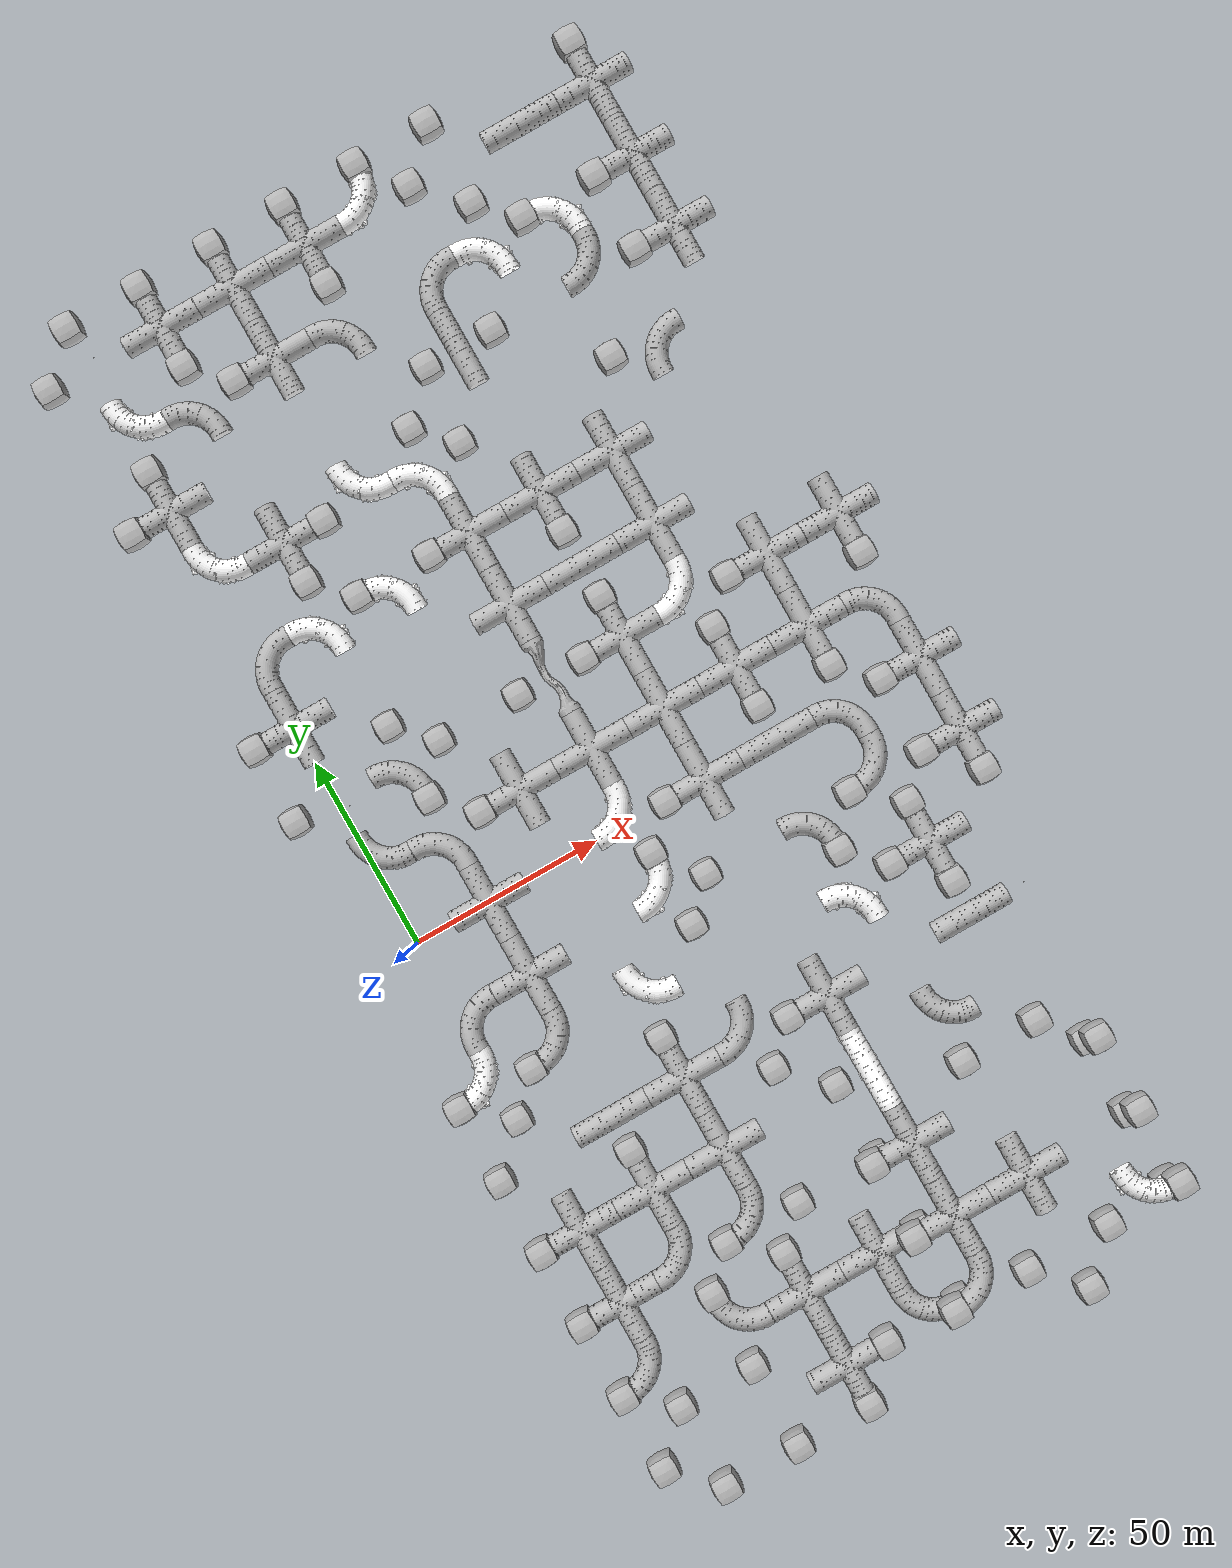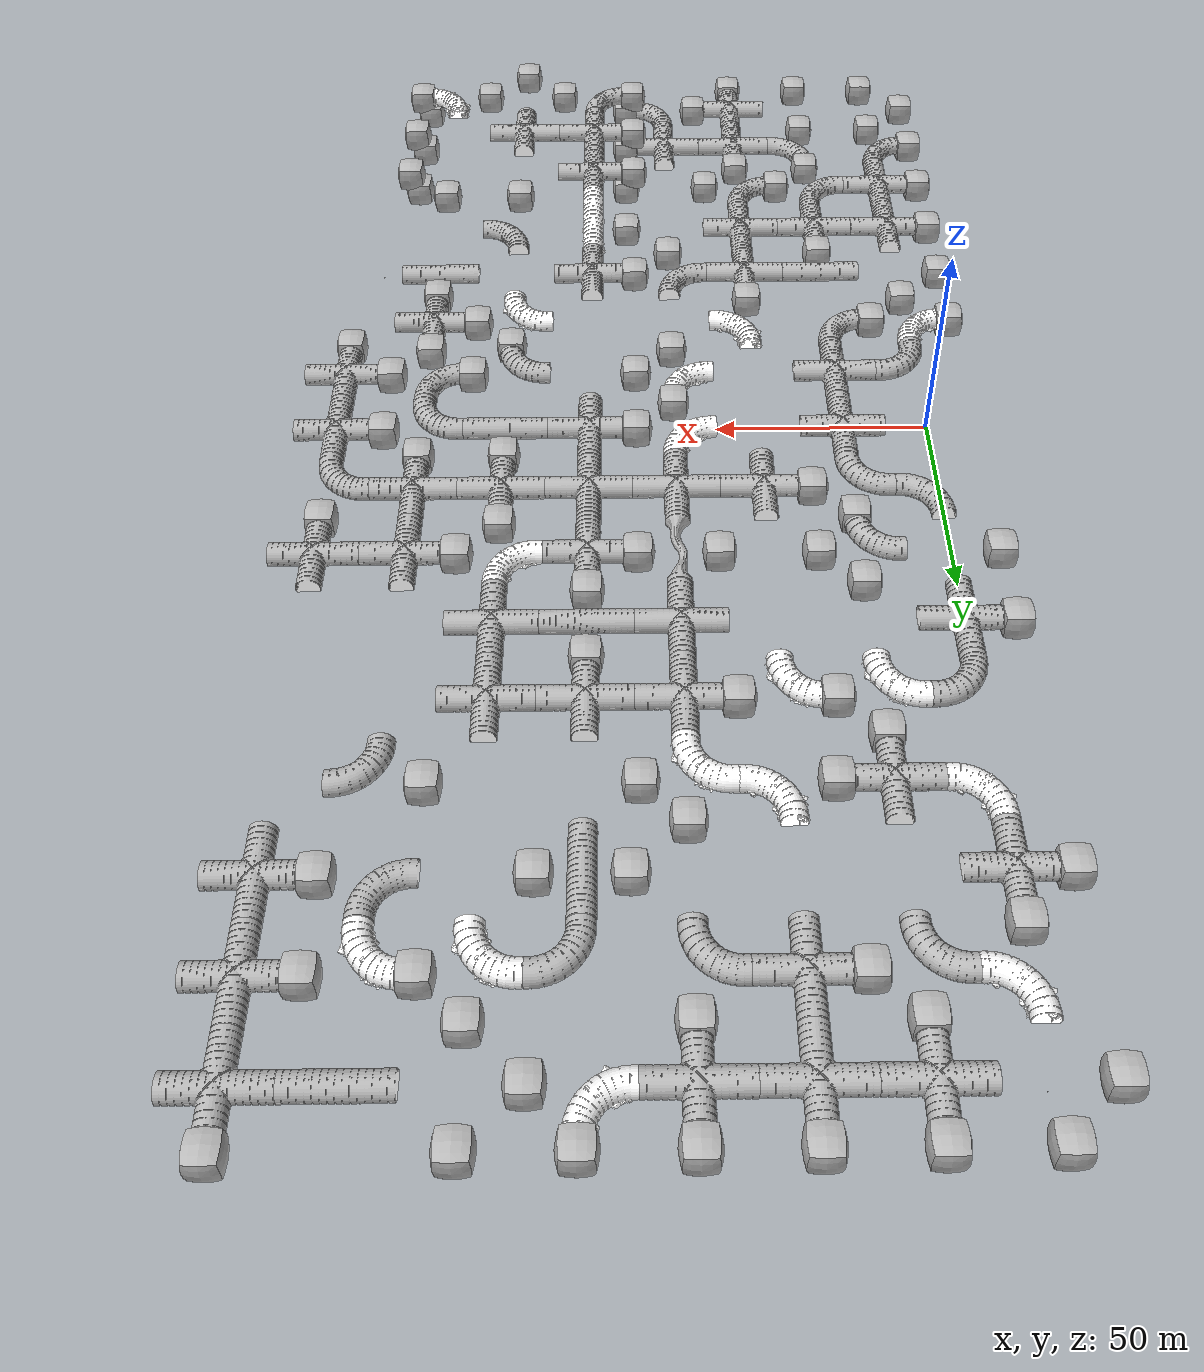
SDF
<sdf version="1.6">
 <world name="tunnel_circuit_practice_01">
  <include><name>artifact_origin</name><pose>10 0 0.0 0 0 0</pose><uri>model://fiducial</uri></include>
  <include>
   <name>tile_2</name>
   <uri>model://tunnel_tile_blocker</uri>
   <pose>-11.000000 160.000000 0.000000 0 0 0.000000</pose>
  </include>
  <include>
   <name>tile_3</name>
   <uri>model://tunnel_tile_blocker</uri>
   <pose>0.000000 171.000000 0.000000 0 0 0.000000</pose>
  </include>
  <include>
   <name>extinguisher_1</name>
   <uri>model://Extinguisher</uri>
   <pose>2.100000 162.100000 0.004000 0 0 0.000000</pose>
  </include>
  <include>
   <name>tile_4</name>
   <uri>model://tunnel_tile_1</uri>
   <pose>20.000000 160.000000 0.000000 0 0 0.000000</pose>
  </include>
  <include>
   <name>tile_5</name>
   <uri>model://tunnel_tile_blocker</uri>
   <pose>20.000000 149.000000 0.000000 0 0 0.000000</pose>
  </include>
  <include>
   <name>tile_6</name>
   <uri>model://tunnel_tile_blocker</uri>
   <pose>20.000000 171.000000 0.000000 0 0 0.000000</pose>
  </include>
  <include>
   <name>tile_7</name>
   <uri>model://tunnel_tile_1</uri>
   <pose>40.000000 160.000000 0.000000 0 0 0.000000</pose>
  </include>
  <include>
   <name>tile_8</name>
   <uri>model://tunnel_tile_blocker</uri>
   <pose>40.000000 171.000000 0.000000 0 0 0.000000</pose>
  </include>
  <include>
   <name>tile_9</name>
   <uri>model://tunnel_tile_1</uri>
   <pose>60.000000 160.000000 0.000000 0 0 0.000000</pose>
  </include>
  <include>
   <name>tile_10</name>
   <uri>model://tunnel_tile_blocker</uri>
   <pose>60.000000 171.000000 0.000000 0 0 0.000000</pose>
  </include>
  <include>
   <name>tile_11</name>
   <uri>model://tunnel_tile_blocker</uri>
   <pose>60.000000 149.000000 0.000000 0 0 0.000000</pose>
  </include>
  <include>
   <name>tile_12</name>
   <uri>model://Rough Tunnel Tile 90-degree Turn</uri>
   <pose>80.000000 160.000000 0.000000 0 0 3.141593</pose>
  </include>
  <include>
   <name>tile_13</name>
   <uri>model://tunnel_tile_blocker</uri>
   <pose>80.000000 171.000000 0.000000 0 0 0.000000</pose>
  </include>
  <include>
   <name>tile_15</name>
   <uri>model://tunnel_tile_blocker</uri>
   <pose>100.000000 149.000000 0.000000 0 0 0.000000</pose>
  </include>
  <include>
   <name>tile_16</name>
   <uri>model://tunnel_tile_blocker</uri>
   <pose>100.000000 171.000000 0.000000 0 0 0.000000</pose>
  </include>
  <include>
   <name>tile_17</name>
   <uri>model://tunnel_tile_blocker</uri>
   <pose>89.000000 160.000000 0.000000 0 0 0.000000</pose>
  </include>
  <include>
   <name>tile_18</name>
   <uri>model://tunnel_tile_5</uri>
   <pose>120.000000 160.000000 0.000000 0 0 4.712389</pose>
  </include>
  <include>
   <name>tile_19</name>
   <uri>model://tunnel_tile_1</uri>
   <pose>140.000000 160.000000 0.000000 0 0 0.000000</pose>
  </include>
  <include>
   <name>tile_20</name>
   <uri>model://tunnel_tile_blocker</uri>
   <pose>140.000000 171.000000 0.000000 0 0 0.000000</pose>
  </include>
  <include>
   <name>tile_40</name>
   <uri>model://Rough Tunnel Tile 90-degree Turn</uri>
   <pose>0.000000 140.000000 0.000000 0 0 1.570796</pose>
  </include>
  <include>
   <name>tile_41</name>
   <uri>model://tunnel_tile_2</uri>
   <pose>20.000000 140.000000 0.000000 0 0 4.712389</pose>
  </include>
  <include>
   <name>tile_42</name>
   <uri>model://tunnel_tile_1</uri>
   <pose>40.000000 140.000000 0.000000 0 0 0.000000</pose>
  </include>
  <include>
   <name>tile_43</name>
   <uri>model://tunnel_tile_blocker</uri>
   <pose>29.000000 140.000000 0.000000 0 0 0.000000</pose>
  </include>
  <include>
   <name>tile_44</name>
   <uri>model://tunnel_tile_2</uri>
   <pose>60.000000 140.000000 0.000000 0 0 4.712389</pose>
  </include>
  <include>
   <name>tile_45</name>
   <uri>model://tunnel_tile_2</uri>
   <pose>80.000000 140.000000 0.000000 0 0 0.000000</pose>
  </include>
  <include>
   <name>tile_46</name>
   <uri>model://Rough Tunnel Tile 90-degree Turn</uri>
   <pose>100.000000 140.000000 0.000000 0 0 4.712389</pose>
  </include>
  <include>
   <name>tile_47</name>
   <uri>model://Rough Tunnel Tile 90-degree Turn</uri>
   <pose>120.000000 140.000000 0.000000 0 0 4.712389</pose>
  </include>
  <include>
   <name>tile_48</name>
   <uri>model://tunnel_tile_blocker</uri>
   <pose>109.000000 140.000000 0.000000 0 0 0.000000</pose>
  </include>
  <include>
   <name>tile_49</name>
   <uri>model://tunnel_tile_1</uri>
   <pose>140.000000 140.000000 0.000000 0 0 0.000000</pose>
  </include>
  <include>
   <name>tile_50</name>
   <uri>model://tunnel_tile_blocker</uri>
   <pose>129.000000 140.000000 0.000000 0 0 0.000000</pose>
  </include>
  <include>
   <name>tile_64</name>
   <uri>model://tunnel_tile_1</uri>
   <pose>0.000000 120.000000 0.000000 0 0 0.000000</pose>
  </include>
  <include>
   <name>tile_65</name>
   <uri>model://tunnel_tile_blocker</uri>
   <pose>0.000000 131.000000 0.000000 0 0 0.000000</pose>
  </include>
  <include>
   <name>tile_66</name>
   <uri>model://tunnel_tile_blocker</uri>
   <pose>-11.000000 120.000000 0.000000 0 0 0.000000</pose>
  </include>
  <include>
   <name>tile_70</name>
   <uri>model://tunnel_tile_blocker</uri>
   <pose>60.000000 109.000000 0.000000 0 0 0.000000</pose>
  </include>
  <include>
   <name>tile_71</name>
   <uri>model://tunnel_tile_blocker</uri>
   <pose>71.000000 120.000000 0.000000 0 0 0.000000</pose>
  </include>
  <include>
   <name>tile_72</name>
   <uri>model://tunnel_tile_5</uri>
   <pose>80.000000 120.000000 0.000000 0 0 3.141593</pose>
  </include>
  <include>
   <name>tile_74</name>
   <uri>model://tunnel_tile_blocker</uri>
   <pose>89.000000 120.000000 0.000000 0 0 0.000000</pose>
  </include>
  <include>
   <name>tile_75</name>
   <uri>model://tunnel_tile_2</uri>
   <pose>120.000000 120.000000 0.000000 0 0 3.141593</pose>
  </include>
  <include>
   <name>tile_76</name>
   <uri>model://tunnel_tile_1</uri>
   <pose>140.000000 120.000000 0.000000 0 0 0.000000</pose>
  </include>
  <include>
   <name>tile_77</name>
   <uri>model://tunnel_tile_blocker</uri>
   <pose>129.000000 120.000000 0.000000 0 0 0.000000</pose>
  </include>
  <include>
   <name>tile_88</name>
   <uri>model://Rough Tunnel Tile 90-degree Turn</uri>
   <pose>0.000000 100.000000 0.000000 0 0 1.570796</pose>
  </include>
  <include>
   <name>tile_89</name>
   <uri>model://tunnel_tile_1</uri>
   <pose>20.000000 100.000000 0.000000 0 0 0.000000</pose>
  </include>
  <include>
   <name>tile_90</name>
   <uri>model://tunnel_tile_blocker</uri>
   <pose>31.000000 100.000000 0.000000 0 0 0.000000</pose>
  </include>
  <include>
   <name>tile_91</name>
   <uri>model://tunnel_tile_blocker</uri>
   <pose>20.000000 89.000000 0.000000 0 0 0.000000</pose>
  </include>
  <include>
   <name>tile_92</name>
   <uri>model://Rough Tunnel Tile 90-degree Turn</uri>
   <pose>40.000000 100.000000 0.000000 0 0 1.570796</pose>
  </include>
  <include>
   <name>tile_93</name>
   <uri>model://Rough Tunnel Tile 90-degree Turn</uri>
   <pose>60.000000 100.000000 0.000000 0 0 4.712389</pose>
  </include>
  <include>
   <name>tile_95</name>
   <uri>model://tunnel_tile_blocker</uri>
   <pose>69.000000 100.000000 0.000000 0 0 0.000000</pose>
  </include>
  <include>
   <name>tile_97</name>
   <uri>model://tunnel_tile_blocker</uri>
   <pose>111.000000 100.000000 0.000000 0 0 0.000000</pose>
  </include>
  <include>
   <name>tile_98</name>
   <uri>model://tunnel_tile_2</uri>
   <pose>120.000000 100.000000 0.000000 0 0 0.000000</pose>
  </include>
  <include>
   <name>tile_116</name>
   <uri>model://tunnel_tile_2</uri>
   <pose>0.000000 80.000000 0.000000 0 0 0.000000</pose>
  </include>
  <include>
   <name>tile_117</name>
   <uri>model://Rough Tunnel Tile 90-degree Turn</uri>
   <pose>20.000000 80.000000 0.000000 0 0 4.712389</pose>
  </include>
  <include>
   <name>tile_118</name>
   <uri>model://Rough Tunnel Tile 90-degree Turn</uri>
   <pose>40.000000 80.000000 0.000000 0 0 4.712389</pose>
  </include>
  <include>
   <name>tile_119</name>
   <uri>model://tunnel_tile_blocker</uri>
   <pose>29.000000 80.000000 0.000000 0 0 0.000000</pose>
  </include>
  <include>
   <name>phone_1</name>
   <uri>model://Phone</uri>
   <pose>34.000000 80.000000 0.004000 -1.570796 0 -0.523599</pose>
  </include>
  <include>
   <name>tile_120</name>
   <uri>model://tunnel_tile_1</uri>
   <pose>60.000000 80.000000 0.000000 0 0 0.000000</pose>
  </include>
  <include>
   <name>tile_121</name>
   <uri>model://tunnel_tile_blocker</uri>
   <pose>49.000000 80.000000 0.000000 0 0 0.000000</pose>
  </include>
  <include>
   <name>tile_122</name>
   <uri>model://tunnel_tile_1</uri>
   <pose>80.000000 80.000000 0.000000 0 0 0.000000</pose>
  </include>
  <include>
   <name>tile_123</name>
   <uri>model://tunnel_tile_blocker</uri>
   <pose>80.000000 69.000000 0.000000 0 0 0.000000</pose>
  </include>
  <include>
   <name>tile_124</name>
   <uri>model://tunnel_tile_1</uri>
   <pose>100.000000 80.000000 0.000000 0 0 0.000000</pose>
  </include>
  <include>
   <name>tile_140</name>
   <uri>model://tunnel_tile_1</uri>
   <pose>0.000000 60.000000 0.000000 0 0 0.000000</pose>
  </include>
  <include>
   <name>tile_141</name>
   <uri>model://tunnel_tile_blocker</uri>
   <pose>-11.000000 60.000000 0.000000 0 0 0.000000</pose>
  </include>
  <include>
   <name>tile_143</name>
   <uri>model://tunnel_tile_blocker</uri>
   <pose>20.000000 49.000000 0.000000 0 0 0.000000</pose>
  </include>
  <include>
   <name>tile_145</name>
   <uri>model://tunnel_tile_1</uri>
   <pose>60.000000 60.000000 0.000000 0 0 0.000000</pose>
  </include>
  <include>
   <name>tile_146</name>
   <uri>model://tunnel_tile_5</uri>
   <pose>80.000000 60.000000 0.000000 0 0 1.570796</pose>
  </include>
  <include>
   <name>tile_147</name>
   <uri>model://tunnel_tile_1</uri>
   <pose>100.000000 60.000000 0.000000 0 0 0.000000</pose>
  </include>
  <include>
   <name>tile_162</name>
   <uri>model://tunnel_tile_blocker</uri>
   <pose>-11.000000 40.000000 0.000000 0 0 0.000000</pose>
  </include>
  <include>
   <name>extinguisher_3</name>
   <uri>model://Extinguisher</uri>
   <pose>2.100000 37.000000 0.004000 0 0 0.000000</pose>
  </include>
  <include>
   <name>tile_163</name>
   <uri>model://tunnel_tile_2</uri>
   <pose>20.000000 40.000000 0.000000 0 0 4.712389</pose>
  </include>
  <include>
   <name>tile_164</name>
   <uri>model://tunnel_tile_blocker</uri>
   <pose>20.000000 29.000000 0.000000 0 0 0.000000</pose>
  </include>
  <include>
   <name>tile_166</name>
   <uri>model://tunnel_tile_blocker</uri>
   <pose>29.000000 40.000000 0.000000 0 0 0.000000</pose>
  </include>
  <include>
   <name>tile_167</name>
   <uri>model://tunnel_tile_blocker</uri>
   <pose>51.000000 40.000000 0.000000 0 0 0.000000</pose>
  </include>
  <include>
   <name>tile_168</name>
   <uri>model://constrained_tunnel_tile_short</uri>
   <pose>60.000000 40.000000 0.000000 0 0 3.141593</pose>
  </include>
  <include>
   <name>tile_169</name>
   <uri>model://tunnel_tile_1</uri>
   <pose>80.000000 40.000000 0.000000 0 0 0.000000</pose>
  </include>
  <include>
   <name>tile_170</name>
   <uri>model://tunnel_tile_blocker</uri>
   <pose>69.000000 40.000000 0.000000 0 0 0.000000</pose>
  </include>
  <include>
   <name>tile_171</name>
   <uri>model://tunnel_tile_blocker</uri>
   <pose>80.000000 51.000000 0.000000 0 0 0.000000</pose>
  </include>
  <include>
   <name>tile_172</name>
   <uri>model://Rough Tunnel Tile 90-degree Turn</uri>
   <pose>100.000000 40.000000 0.000000 0 0 3.141593</pose>
  </include>
  <include>
   <name>tile_173</name>
   <uri>model://tunnel_tile_1</uri>
   <pose>120.000000 40.000000 0.000000 0 0 0.000000</pose>
  </include>
  <include>
   <name>tile_174</name>
   <uri>model://tunnel_tile_blocker</uri>
   <pose>109.000000 40.000000 0.000000 0 0 0.000000</pose>
  </include>
  <include>
   <name>tile_175</name>
   <uri>model://tunnel_tile_1</uri>
   <pose>140.000000 40.000000 0.000000 0 0 0.000000</pose>
  </include>
  <include>
   <name>tile_176</name>
   <uri>model://tunnel_tile_blocker</uri>
   <pose>140.000000 29.000000 0.000000 0 0 0.000000</pose>
  </include>
  <include>
   <name>tile_189</name>
   <uri>model://tunnel_tile_2</uri>
   <pose>0.000000 20.000000 0.000000 0 0 1.570796</pose>
  </include>
  <include>
   <name>tile_190</name>
   <uri>model://tunnel_tile_2</uri>
   <pose>20.000000 20.000000 0.000000 0 0 4.712389</pose>
  </include>
  <include>
   <name>tile_191</name>
   <uri>model://tunnel_tile_1</uri>
   <pose>40.000000 20.000000 0.000000 0 0 0.000000</pose>
  </include>
  <include>
   <name>tile_192</name>
   <uri>model://tunnel_tile_blocker</uri>
   <pose>29.000000 20.000000 0.000000 0 0 0.000000</pose>
  </include>
  <include>
   <name>backpack_1</name>
   <uri>model://Backpack</uri>
   <pose>41.000000 14.000000 0.004000 0 0 0.000000</pose>
  </include>
  <include>
   <name>tile_193</name>
   <uri>model://tunnel_tile_1</uri>
   <pose>60.000000 20.000000 0.000000 0 0 0.000000</pose>
  </include>
  <include>
   <name>tile_194</name>
   <uri>model://tunnel_tile_1</uri>
   <pose>80.000000 20.000000 0.000000 0 0 0.000000</pose>
  </include>
  <include>
   <name>tile_195</name>
   <uri>model://tunnel_tile_1</uri>
   <pose>100.000000 20.000000 0.000000 0 0 0.000000</pose>
  </include>
  <include>
   <name>tile_196</name>
   <uri>model://tunnel_tile_blocker</uri>
   <pose>100.000000 31.000000 0.000000 0 0 0.000000</pose>
  </include>
  <include>
   <name>tile_197</name>
   <uri>model://tunnel_tile_blocker</uri>
   <pose>100.000000 9.000000 0.000000 0 0 0.000000</pose>
  </include>
  <include>
   <name>tile_198</name>
   <uri>model://tunnel_tile_1</uri>
   <pose>120.000000 20.000000 0.000000 0 0 0.000000</pose>
  </include>
  <include>
   <name>tile_199</name>
   <uri>model://tunnel_tile_blocker</uri>
   <pose>120.000000 9.000000 0.000000 0 0 0.000000</pose>
  </include>
  <include>
   <name>tile_200</name>
   <uri>model://tunnel_tile_2</uri>
   <pose>140.000000 20.000000 0.000000 0 0 4.712389</pose>
  </include>
  <include>
   <name>tile_211</name>
   <uri>model://tunnel_tile_1</uri>
   <pose>20.000000 0.000000 0.000000 0 0 0.000000</pose>
  </include>
  <include>
   <name>tile_213</name>
   <uri>model://Rough Tunnel Tile 90-degree Turn</uri>
   <pose>60.000000 0.000000 0.000000 0 0 3.141593</pose>
  </include>
  <include>
   <name>tile_214</name>
   <uri>model://tunnel_tile_1</uri>
   <pose>80.000000 0.000000 0.000000 0 0 0.000000</pose>
  </include>
  <include>
   <name>tile_215</name>
   <uri>model://tunnel_tile_blocker</uri>
   <pose>69.000000 0.000000 0.000000 0 0 0.000000</pose>
  </include>
  <include>
   <name>tile_216</name>
   <uri>model://tunnel_tile_5</uri>
   <pose>100.000000 0.000000 0.000000 0 0 1.570796</pose>
  </include>
  <include>
   <name>tile_217</name>
   <uri>model://tunnel_tile_2</uri>
   <pose>120.000000 0.000000 0.000000 0 0 4.712389</pose>
  </include>
  <include>
   <name>tile_218</name>
   <uri>model://tunnel_tile_1</uri>
   <pose>140.000000 0.000000 0.000000 0 0 0.000000</pose>
  </include>
  <include>
   <name>tile_219</name>
   <uri>model://tunnel_tile_blocker</uri>
   <pose>129.000000 0.000000 0.000000 0 0 0.000000</pose>
  </include>
  <include>
   <name>tile_233</name>
   <uri>model://tunnel_tile_2</uri>
   <pose>0.000000 -20.000000 0.000000 0 0 0.000000</pose>
  </include>
  <include>
   <name>tile_234</name>
   <uri>model://tunnel_tile_1</uri>
   <pose>20.000000 -20.000000 0.000000 0 0 0.000000</pose>
  </include>
  <include>
   <name>tile_236</name>
   <uri>model://Rough Tunnel Tile 90-degree Turn</uri>
   <pose>60.000000 -20.000000 0.000000 0 0 3.141593</pose>
  </include>
  <include>
   <name>tile_237</name>
   <uri>model://tunnel_tile_blocker</uri>
   <pose>60.000000 -9.000000 0.000000 0 0 0.000000</pose>
  </include>
  <include>
   <name>tile_239</name>
   <uri>model://tunnel_tile_blocker</uri>
   <pose>69.000000 -20.000000 0.000000 0 0 0.000000</pose>
  </include>
  <include>
   <name>tile_240</name>
   <uri>model://tunnel_tile_2</uri>
   <pose>100.000000 -20.000000 0.000000 0 0 4.712389</pose>
  </include>
  <include>
   <name>tile_241</name>
   <uri>model://tunnel_tile_blocker</uri>
   <pose>100.000000 -31.000000 0.000000 0 0 0.000000</pose>
  </include>
  <include>
   <name>tile_242</name>
   <uri>model://tunnel_tile_2</uri>
   <pose>120.000000 -20.000000 0.000000 0 0 3.141593</pose>
  </include>
  <include>
   <name>tile_243</name>
   <uri>model://tunnel_tile_blocker</uri>
   <pose>109.000000 -20.000000 0.000000 0 0 0.000000</pose>
  </include>
  <include>
   <name>phone_3</name>
   <uri>model://Phone</uri>
   <pose>117.000000 -20.200000 0.004000 -1.570796 0 0.000000</pose>
  </include>
  <include>
   <name>tile_244</name>
   <uri>model://tunnel_tile_1</uri>
   <pose>140.000000 -20.000000 0.000000 0 0 0.000000</pose>
  </include>
  <include>
   <name>tile_245</name>
   <uri>model://tunnel_tile_blocker</uri>
   <pose>129.000000 -20.000000 0.000000 0 0 0.000000</pose>
  </include>
  <include>
   <name>tile_246</name>
   <uri>model://tunnel_tile_blocker</uri>
   <pose>140.000000 -31.000000 0.000000 0 0 0.000000</pose>
  </include>
  <include>
   <name>phone_4</name>
   <uri>model://Phone</uri>
   <pose>137.000000 -17.900000 0.004000 -1.570796 0 -1.570796</pose>
  </include>
  <include>
   <name>tile_262</name>
   <uri>model://Rough Tunnel Tile 90-degree Turn</uri>
   <pose>0.000000 -40.000000 0.000000 0 0 3.141593</pose>
  </include>
  <include>
   <name>tile_263</name>
   <uri>model://tunnel_tile_blocker</uri>
   <pose>-11.000000 -40.000000 0.000000 0 0 0.000000</pose>
  </include>
  <include>
   <name>tile_264</name>
   <uri>model://tunnel_tile_2</uri>
   <pose>20.000000 -40.000000 0.000000 0 0 3.141593</pose>
  </include>
  <include>
   <name>tile_265</name>
   <uri>model://tunnel_tile_blocker</uri>
   <pose>9.000000 -40.000000 0.000000 0 0 0.000000</pose>
  </include>
  <include>
   <name>tile_266</name>
   <uri>model://Rough Tunnel Tile 90-degree Turn</uri>
   <pose>40.000000 -40.000000 0.000000 0 0 1.570796</pose>
  </include>
  <include>
   <name>tile_268</name>
   <uri>model://tunnel_tile_blocker</uri>
   <pose>60.000000 -29.000000 0.000000 0 0 0.000000</pose>
  </include>
  <include>
   <name>tile_270</name>
   <uri>model://Rough Tunnel Tile 90-degree Turn</uri>
   <pose>100.000000 -40.000000 0.000000 0 0 4.712389</pose>
  </include>
  <include>
   <name>tile_271</name>
   <uri>model://tunnel_tile_1</uri>
   <pose>120.000000 -40.000000 0.000000 0 0 0.000000</pose>
  </include>
  <include>
   <name>tile_272</name>
   <uri>model://tunnel_tile_blocker</uri>
   <pose>120.000000 -51.000000 0.000000 0 0 0.000000</pose>
  </include>
  <include>
   <name>tile_273</name>
   <uri>model://tunnel_tile_blocker</uri>
   <pose>120.000000 -29.000000 0.000000 0 0 0.000000</pose>
  </include>
  <include>
   <name>tile_274</name>
   <uri>model://tunnel_tile_blocker</uri>
   <pose>109.000000 -40.000000 0.000000 0 0 0.000000</pose>
  </include>
  <include>
   <name>tile_294</name>
   <uri>model://tunnel_tile_blocker</uri>
   <pose>0.000000 -49.000000 0.000000 0 0 0.000000</pose>
  </include>
  <include>
   <name>tile_295</name>
   <uri>model://tunnel_tile_blocker</uri>
   <pose>-11.000000 -60.000000 0.000000 0 0 0.000000</pose>
  </include>
  <include>
   <name>tile_296</name>
   <uri>model://tunnel_tile_5</uri>
   <pose>20.000000 -60.000000 0.000000 0 0 4.712389</pose>
  </include>
  <include>
   <name>tile_297</name>
   <uri>model://tunnel_tile_1</uri>
   <pose>40.000000 -60.000000 0.000000 0 0 0.000000</pose>
  </include>
  <include>
   <name>tile_298</name>
   <uri>model://tunnel_tile_blocker</uri>
   <pose>40.000000 -49.000000 0.000000 0 0 0.000000</pose>
  </include>
  <include>
   <name>tile_299</name>
   <uri>model://tunnel_tile_2</uri>
   <pose>60.000000 -60.000000 0.000000 0 0 3.141593</pose>
  </include>
  <include>
   <name>tile_300</name>
   <uri>model://tunnel_tile_1</uri>
   <pose>80.000000 -60.000000 0.000000 0 0 0.000000</pose>
  </include>
  <include>
   <name>tile_301</name>
   <uri>model://tunnel_tile_blocker</uri>
   <pose>69.000000 -60.000000 0.000000 0 0 0.000000</pose>
  </include>
  <include>
   <name>tile_303</name>
   <uri>model://tunnel_tile_5</uri>
   <pose>120.000000 -60.000000 0.000000 0 0 1.570796</pose>
  </include>
  <include>
   <name>extinguisher_4</name>
   <uri>model://Extinguisher</uri>
   <pose>135.000000 -60.000000 0.004000 0 0 5.235988</pose>
  </include>
  <include>
   <name>tile_317</name>
   <uri>model://tunnel_tile_1</uri>
   <pose>0.000000 -80.000000 0.000000 0 0 0.000000</pose>
  </include>
  <include>
   <name>tile_318</name>
   <uri>model://tunnel_tile_blocker</uri>
   <pose>-11.000000 -80.000000 0.000000 0 0 0.000000</pose>
  </include>
  <include>
   <name>tile_319</name>
   <uri>model://tunnel_tile_1</uri>
   <pose>20.000000 -80.000000 0.000000 0 0 0.000000</pose>
  </include>
  <include>
   <name>tile_320</name>
   <uri>model://tunnel_tile_blocker</uri>
   <pose>20.000000 -69.000000 0.000000 0 0 0.000000</pose>
  </include>
  <include>
   <name>tile_321</name>
   <uri>model://tunnel_tile_1</uri>
   <pose>40.000000 -80.000000 0.000000 0 0 0.000000</pose>
  </include>
  <include>
   <name>tile_323</name>
   <uri>model://tunnel_tile_blocker</uri>
   <pose>60.000000 -69.000000 0.000000 0 0 0.000000</pose>
  </include>
  <include>
   <name>tile_324</name>
   <uri>model://tunnel_tile_blocker</uri>
   <pose>71.000000 -80.000000 0.000000 0 0 0.000000</pose>
  </include>
  <include>
   <name>tile_325</name>
   <uri>model://Rough Tunnel Tile Ramp</uri>
   <pose>80.000000 -80.000000 0.000000 0 0 3.141593</pose>
  </include>
  <include>
   <name>tile_326</name>
   <uri>model://tunnel_tile_2</uri>
   <pose>100.000000 -80.000000 0.000000 0 0 1.570796</pose>
  </include>
  <include>
   <name>tile_339</name>
   <uri>model://tunnel_tile_1</uri>
   <pose>0.000000 -100.000000 0.000000 0 0 0.000000</pose>
  </include>
  <include>
   <name>tile_340</name>
   <uri>model://tunnel_tile_blocker</uri>
   <pose>-11.000000 -100.000000 0.000000 0 0 0.000000</pose>
  </include>
  <include>
   <name>tile_341</name>
   <uri>model://tunnel_tile_2</uri>
   <pose>20.000000 -100.000000 0.000000 0 0 3.141593</pose>
  </include>
  <include>
   <name>tile_342</name>
   <uri>model://tunnel_tile_2</uri>
   <pose>40.000000 -100.000000 0.000000 0 0 3.141593</pose>
  </include>
  <include>
   <name>tile_343</name>
   <uri>model://tunnel_tile_blocker</uri>
   <pose>29.000000 -100.000000 0.000000 0 0 0.000000</pose>
  </include>
  <include>
   <name>tile_345</name>
   <uri>model://tunnel_tile_blocker</uri>
   <pose>71.000000 -100.000000 0.000000 0 0 0.000000</pose>
  </include>
  <include>
   <name>tile_346</name>
   <uri>model://tunnel_tile_blocker</uri>
   <pose>49.000000 -100.000000 0.000000 0 0 0.000000</pose>
  </include>
  <include>
   <name>tile_347</name>
   <uri>model://tunnel_tile_1</uri>
   <pose>80.000000 -100.000000 5.000000 0 0 0.000000</pose>
  </include>
  <include>
   <name>tile_348</name>
   <uri>model://tunnel_tile_blocker</uri>
   <pose>69.000000 -100.000000 5.000000 0 0 0.000000</pose>
  </include>
  <include>
   <name>tile_350</name>
   <uri>model://tunnel_tile_blocker</uri>
   <pose>100.000000 -89.000000 5.000000 0 0 0.000000</pose>
  </include>
  <include>
   <name>tile_352</name>
   <uri>model://tunnel_tile_blocker</uri>
   <pose>120.000000 -89.000000 5.000000 0 0 0.000000</pose>
  </include>
  <include>
   <name>tile_353</name>
   <uri>model://tunnel_tile_blocker</uri>
   <pose>131.000000 -100.000000 5.000000 0 0 0.000000</pose>
  </include>
  <include>
   <name>tile_355</name>
   <uri>model://tunnel_tile_blocker</uri>
   <pose>129.000000 -100.000000 0.000000 0 0 0.000000</pose>
  </include>
  <include>
   <name>tile_369</name>
   <uri>model://tunnel_tile_2</uri>
   <pose>0.000000 -120.000000 0.000000 0 0 3.141593</pose>
  </include>
  <include>
   <name>tile_370</name>
   <uri>model://tunnel_tile_blocker</uri>
   <pose>-11.000000 -120.000000 0.000000 0 0 0.000000</pose>
  </include>
  <include>
   <name>tile_371</name>
   <uri>model://tunnel_tile_2</uri>
   <pose>20.000000 -120.000000 0.000000 0 0 1.570796</pose>
  </include>
  <include>
   <name>tile_372</name>
   <uri>model://tunnel_tile_blocker</uri>
   <pose>20.000000 -109.000000 0.000000 0 0 0.000000</pose>
  </include>
  <include>
   <name>tile_373</name>
   <uri>model://tunnel_tile_1</uri>
   <pose>40.000000 -120.000000 0.000000 0 0 0.000000</pose>
  </include>
  <include>
   <name>tile_374</name>
   <uri>model://tunnel_tile_blocker</uri>
   <pose>40.000000 -109.000000 0.000000 0 0 0.000000</pose>
  </include>
  <include>
   <name>tile_375</name>
   <uri>model://tunnel_tile_1</uri>
   <pose>60.000000 -120.000000 0.000000 0 0 0.000000</pose>
  </include>
  <include>
   <name>tile_376</name>
   <uri>model://tunnel_tile_blocker</uri>
   <pose>71.000000 -120.000000 0.000000 0 0 0.000000</pose>
  </include>
  <include>
   <name>tile_377</name>
   <uri>model://tunnel_tile_1</uri>
   <pose>80.000000 -120.000000 5.000000 0 0 0.000000</pose>
  </include>
  <include>
   <name>tile_378</name>
   <uri>model://tunnel_tile_blocker</uri>
   <pose>69.000000 -120.000000 5.000000 0 0 0.000000</pose>
  </include>
  <include>
   <name>tile_379</name>
   <uri>model://tunnel_tile_1</uri>
   <pose>100.000000 -120.000000 5.000000 0 0 0.000000</pose>
  </include>
  <include>
   <name>tile_381</name>
   <uri>model://tunnel_tile_blocker</uri>
   <pose>131.000000 -120.000000 5.000000 0 0 0.000000</pose>
  </include>
  <include>
   <name>tile_383</name>
   <uri>model://tunnel_tile_blocker</uri>
   <pose>129.000000 -120.000000 0.000000 0 0 0.000000</pose>
  </include>
  <include>
   <name>tile_399</name>
   <uri>model://tunnel_tile_blocker</uri>
   <pose>0.000000 -151.000000 0.000000 0 0 0.000000</pose>
  </include>
  <include>
   <name>tile_400</name>
   <uri>model://tunnel_tile_blocker</uri>
   <pose>0.000000 -129.000000 0.000000 0 0 0.000000</pose>
  </include>
  <include>
   <name>tile_401</name>
   <uri>model://tunnel_tile_blocker</uri>
   <pose>-11.000000 -140.000000 0.000000 0 0 0.000000</pose>
  </include>
  <include>
   <name>tile_403</name>
   <uri>model://tunnel_tile_blocker</uri>
   <pose>20.000000 -151.000000 0.000000 0 0 0.000000</pose>
  </include>
  <include>
   <name>tile_404</name>
   <uri>model://tunnel_tile_blocker</uri>
   <pose>20.000000 -129.000000 0.000000 0 0 0.000000</pose>
  </include>
  <include>
   <name>tile_405</name>
   <uri>model://tunnel_tile_1</uri>
   <pose>40.000000 -140.000000 0.000000 0 0 0.000000</pose>
  </include>
  <include>
   <name>tile_406</name>
   <uri>model://tunnel_tile_blocker</uri>
   <pose>51.000000 -140.000000 0.000000 0 0 0.000000</pose>
  </include>
  <include>
   <name>tile_407</name>
   <uri>model://tunnel_tile_blocker</uri>
   <pose>40.000000 -151.000000 0.000000 0 0 0.000000</pose>
  </include>
  <include>
   <name>tile_408</name>
   <uri>model://tunnel_tile_2</uri>
   <pose>60.000000 -140.000000 0.000000 0 0 1.570796</pose>
  </include>
  <include>
   <name>tile_409</name>
   <uri>model://tunnel_tile_blocker</uri>
   <pose>71.000000 -140.000000 0.000000 0 0 0.000000</pose>
  </include>
  <include>
   <name>tile_410</name>
   <uri>model://tunnel_tile_2</uri>
   <pose>80.000000 -140.000000 5.000000 0 0 3.141593</pose>
  </include>
  <include>
   <name>tile_411</name>
   <uri>model://tunnel_tile_blocker</uri>
   <pose>69.000000 -140.000000 5.000000 0 0 0.000000</pose>
  </include>
  <include>
   <name>backpack_2</name>
   <uri>model://Backpack</uri>
   <pose>75.000000 -140.000000 5.004000 0 0 0.000000</pose>
  </include>
  <include>
   <name>tile_413</name>
   <uri>model://tunnel_tile_blocker</uri>
   <pose>111.000000 -140.000000 5.000000 0 0 0.000000</pose>
  </include>
  <include>
   <name>tile_414</name>
   <uri>model://tunnel_tile_blocker</uri>
   <pose>89.000000 -140.000000 5.000000 0 0 0.000000</pose>
  </include>
  <include>
   <name>tile_415</name>
   <uri>model://tunnel_tile_blocker</uri>
   <pose>100.000000 -151.000000 5.000000 0 0 0.000000</pose>
  </include>
  <include>
   <name>tile_416</name>
   <uri>model://Rough Tunnel Tile 90-degree Turn</uri>
   <pose>120.000000 -140.000000 5.000000 0 0 1.570796</pose>
  </include>
  <include>
   <name>tile_417</name>
   <uri>model://tunnel_tile_blocker</uri>
   <pose>131.000000 -140.000000 5.000000 0 0 0.000000</pose>
  </include>
  <include>
   <name>tile_419</name>
   <uri>model://tunnel_tile_blocker</uri>
   <pose>129.000000 -140.000000 0.000000 0 0 0.000000</pose>
  </include>
 </world>
</sdf>
